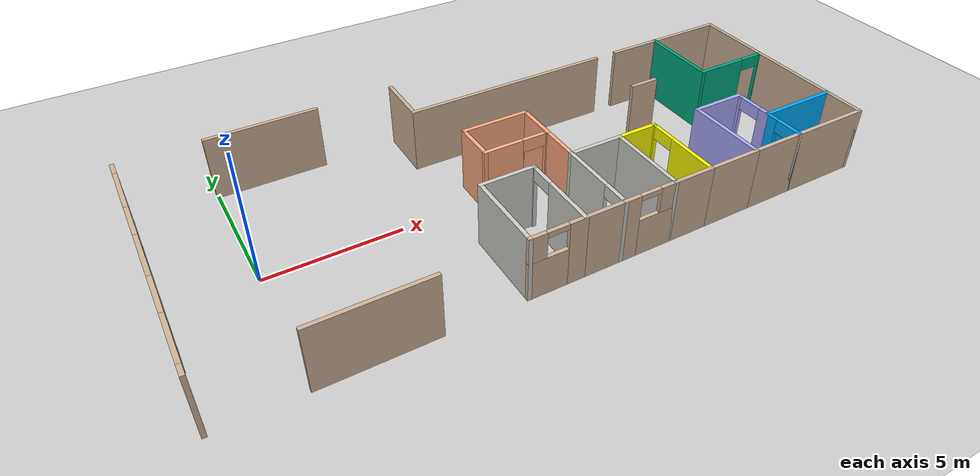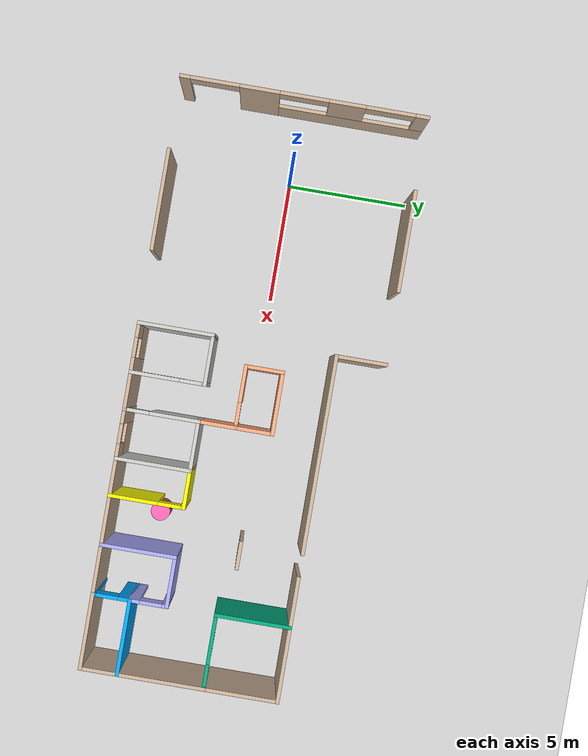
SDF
<sdf version="1.6">
 <world name="default">
  <model name="ground_plane">
   <static>1</static>
   <link name="link">
    <collision name="collision">
     <geometry><plane><normal>0 0 1</normal><size>100 100</size></plane></geometry>
     <surface><friction><ode><mu>100</mu><mu2>50</mu2></ode></friction></surface>
    </collision>
    <visual name="visual">
     <cast_shadows>0</cast_shadows>
     <geometry><plane><normal>0 0 1</normal><size>100 100</size></plane></geometry>
     <material>
      <script><uri>file://media/materials/scripts/gazebo.material</uri><name>Gazebo/Grey</name></script>
     </material>
    </visual>
   </link>
  </model>
  <model name="restaurant_renato">
   <pose>9 0 0 0 -0 0</pose>
   <link name="Wall_1">
    <pose>-12 0 0 0 -0 1.5708</pose>
    <visual name="Wall_1_Visual_0">
     <pose>-4.85276 0 1.25 0 -0 0</pose>
     <geometry><box><size>0.444476 0.15 2.5</size></box></geometry>
     <material>
      <script><uri>file://media/materials/scripts/gazebo.material</uri><name>Gazebo/Grey</name></script>
      <ambient>0.8 0.7 0.6 1</ambient>
     </material>
     <meta><layer>0</layer></meta>
    </visual>
    <collision name="Wall_1_Collision_0">
     <geometry><box><size>0.444476 0.15 2.5</size></box></geometry>
     <pose>-4.85276 0 1.25 0 -0 0</pose>
    </collision>
    <visual name="Wall_1_Visual_1">
     <pose>-1.81526 0 1.25 0 -0 0</pose>
     <geometry><box><size>1.63052 0.15 2.5</size></box></geometry>
     <material>
      <script><uri>file://media/materials/scripts/gazebo.material</uri><name>Gazebo/Grey</name></script>
      <ambient>0.8 0.7 0.6 1</ambient>
     </material>
     <meta><layer>0</layer></meta>
    </visual>
    <collision name="Wall_1_Collision_1">
     <geometry><box><size>1.63052 0.15 2.5</size></box></geometry>
     <pose>-1.81526 0 1.25 0 -0 0</pose>
    </collision>
    <visual name="Wall_1_Visual_2">
     <pose>2.0375 0 0.5 0 -0 0</pose>
     <geometry><box><size>6.075 0.15 1</size></box></geometry>
     <material>
      <script><uri>file://media/materials/scripts/gazebo.material</uri><name>Gazebo/Grey</name></script>
      <ambient>0.8 0.7 0.6 1</ambient>
     </material>
     <meta><layer>0</layer></meta>
    </visual>
    <collision name="Wall_1_Collision_2">
     <geometry><box><size>6.075 0.15 1</size></box></geometry>
     <pose>2.0375 0 0.5 0 -0 0</pose>
    </collision>
    <visual name="Wall_1_Visual_3">
     <pose>1.75 0 1.75 0 -0 0</pose>
     <geometry><box><size>1.5 0.15 1.5</size></box></geometry>
     <material>
      <script><uri>file://media/materials/scripts/gazebo.material</uri><name>Gazebo/Grey</name></script>
      <ambient>0.8 0.7 0.6 1</ambient>
     </material>
     <meta><layer>0</layer></meta>
    </visual>
    <collision name="Wall_1_Collision_3">
     <geometry><box><size>1.5 0.15 1.5</size></box></geometry>
     <pose>1.75 0 1.75 0 -0 0</pose>
    </collision>
    <visual name="Wall_1_Visual_4">
     <pose>4.7875 0 1.75 0 -0 0</pose>
     <geometry><box><size>0.575 0.15 1.5</size></box></geometry>
     <material>
      <script><uri>file://media/materials/scripts/gazebo.material</uri><name>Gazebo/Grey</name></script>
      <ambient>0.8 0.7 0.6 1</ambient>
     </material>
     <meta><layer>0</layer></meta>
    </visual>
    <collision name="Wall_1_Collision_4">
     <geometry><box><size>0.575 0.15 1.5</size></box></geometry>
     <pose>4.7875 0 1.75 0 -0 0</pose>
    </collision>
    <visual name="Wall_1_Visual_5">
     <pose>-3.63052 0 2.25 0 -0 0</pose>
     <geometry><box><size>2 0.15 0.5</size></box></geometry>
     <material>
      <script><uri>file://media/materials/scripts/gazebo.material</uri><name>Gazebo/Grey</name></script>
      <ambient>0.8 0.7 0.6 1</ambient>
     </material>
     <meta><layer>0</layer></meta>
    </visual>
    <collision name="Wall_1_Collision_5">
     <geometry><box><size>2 0.15 0.5</size></box></geometry>
     <pose>-3.63052 0 2.25 0 -0 0</pose>
    </collision>
    <visual name="Wall_1_Visual_6">
     <pose>0 0 2.25 0 -0 0</pose>
     <geometry><box><size>2 0.15 0.5</size></box></geometry>
     <material>
      <script><uri>file://media/materials/scripts/gazebo.material</uri><name>Gazebo/Grey</name></script>
      <ambient>0.8 0.7 0.6 1</ambient>
     </material>
     <meta><layer>0</layer></meta>
    </visual>
    <collision name="Wall_1_Collision_6">
     <geometry><box><size>2 0.15 0.5</size></box></geometry>
     <pose>0 0 2.25 0 -0 0</pose>
    </collision>
    <visual name="Wall_1_Visual_7">
     <pose>3.5 0 2.25 0 -0 0</pose>
     <geometry><box><size>2 0.15 0.5</size></box></geometry>
     <material>
      <script><uri>file://media/materials/scripts/gazebo.material</uri><name>Gazebo/Grey</name></script>
      <ambient>0.8 0.7 0.6 1</ambient>
     </material>
     <meta><layer>0</layer></meta>
    </visual>
    <collision name="Wall_1_Collision_7">
     <geometry><box><size>2 0.15 0.5</size></box></geometry>
     <pose>3.5 0 2.25 0 -0 0</pose>
    </collision>
   </link>
   <link name="Wall_24">
    <collision name="Wall_24_Collision">
     <geometry><box><size>3.15 0.15 2.5</size></box></geometry>
     <pose>0 0 1.25 0 -0 0</pose>
    </collision>
    <visual name="Wall_24_Visual">
     <pose>0 0 1.25 0 -0 0</pose>
     <geometry><box><size>3.15 0.15 2.5</size></box></geometry>
     <material>
      <script><uri>file://media/materials/scripts/gazebo.material</uri><name>Gazebo/CeilingTiled</name></script>
      <ambient>1 0 0 1</ambient>
     </material>
     <meta><layer>0</layer></meta>
    </visual>
    <pose>-2 -3.5 0 0 -0 1.5708</pose>
   </link>
   <link name="Wall_25">
    <collision name="Wall_25_Collision">
     <geometry><box><size>2.15 0.15 2.5</size></box></geometry>
     <pose>0 0 1.25 0 -0 0</pose>
    </collision>
    <visual name="Wall_25_Visual">
     <pose>0 0 1.25 0 -0 0</pose>
     <geometry><box><size>2.15 0.15 2.5</size></box></geometry>
     <material>
      <script><uri>file://media/materials/scripts/gazebo.material</uri><name>Gazebo/CeilingTiled</name></script>
      <ambient>1 0 0 1</ambient>
     </material>
     <meta><layer>0</layer></meta>
    </visual>
    <pose>-1 -2 0 0 -0 0</pose>
   </link>
   <link name="Wall_26">
    <pose>0 -3.5 0 0 0 -1.5708</pose>
    <visual name="Wall_26_Visual_0">
     <pose>-1.47325 0 1.25 0 -0 0</pose>
     <geometry><box><size>0.203506 0.15 2.5</size></box></geometry>
     <material>
      <script><uri>file://media/materials/scripts/gazebo.material</uri><name>Gazebo/CeilingTiled</name></script>
      <ambient>1 0 0 1</ambient>
     </material>
     <meta><layer>0</layer></meta>
    </visual>
    <collision name="Wall_26_Collision_0">
     <geometry><box><size>0.203506 0.15 2.5</size></box></geometry>
     <pose>-1.47325 0 1.25 0 -0 0</pose>
    </collision>
    <visual name="Wall_26_Visual_1">
     <pose>0.551753 0 1.25 0 -0 0</pose>
     <geometry><box><size>2.04649 0.15 2.5</size></box></geometry>
     <material>
      <script><uri>file://media/materials/scripts/gazebo.material</uri><name>Gazebo/CeilingTiled</name></script>
      <ambient>1 0 0 1</ambient>
     </material>
     <meta><layer>0</layer></meta>
    </visual>
    <collision name="Wall_26_Collision_1">
     <geometry><box><size>2.04649 0.15 2.5</size></box></geometry>
     <pose>0.551753 0 1.25 0 -0 0</pose>
    </collision>
    <visual name="Wall_26_Visual_2">
     <pose>-0.921494 0 2.25 0 -0 0</pose>
     <geometry><box><size>0.9 0.15 0.5</size></box></geometry>
     <material>
      <script><uri>file://media/materials/scripts/gazebo.material</uri><name>Gazebo/CeilingTiled</name></script>
      <ambient>1 0 0 1</ambient>
     </material>
     <meta><layer>0</layer></meta>
    </visual>
    <collision name="Wall_26_Collision_2">
     <geometry><box><size>0.9 0.15 0.5</size></box></geometry>
     <pose>-0.921494 0 2.25 0 -0 0</pose>
    </collision>
   </link>
   <link name="Wall_27">
    <pose>-1 -5 0 0 -0 3.14159</pose>
    <visual name="Wall_27_Visual_0">
     <pose>-0.7375 0 1.25 0 -0 0</pose>
     <geometry><box><size>0.675 0.15 2.5</size></box></geometry>
     <material>
      <script><uri>file://media/materials/scripts/gazebo.material</uri><name>Gazebo/Grey</name></script>
      <ambient>0.8 0.7 0.6 1</ambient>
     </material>
     <meta><layer>0</layer></meta>
    </visual>
    <collision name="Wall_27_Collision_0">
     <geometry><box><size>0.675 0.15 2.5</size></box></geometry>
     <pose>-0.7375 0 1.25 0 -0 0</pose>
    </collision>
    <visual name="Wall_27_Visual_1">
     <pose>0.3375 0 0.75 0 -0 0</pose>
     <geometry><box><size>1.475 0.15 1.5</size></box></geometry>
     <material>
      <script><uri>file://media/materials/scripts/gazebo.material</uri><name>Gazebo/Grey</name></script>
      <ambient>0.8 0.7 0.6 1</ambient>
     </material>
     <meta><layer>0</layer></meta>
    </visual>
    <collision name="Wall_27_Collision_1">
     <geometry><box><size>1.475 0.15 1.5</size></box></geometry>
     <pose>0.3375 0 0.75 0 -0 0</pose>
    </collision>
    <visual name="Wall_27_Visual_2">
     <pose>0.7375 0 2 0 -0 0</pose>
     <geometry><box><size>0.675 0.15 1</size></box></geometry>
     <material>
      <script><uri>file://media/materials/scripts/gazebo.material</uri><name>Gazebo/Grey</name></script>
      <ambient>0.8 0.7 0.6 1</ambient>
     </material>
     <meta><layer>0</layer></meta>
    </visual>
    <collision name="Wall_27_Collision_2">
     <geometry><box><size>0.675 0.15 1</size></box></geometry>
     <pose>0.7375 0 2 0 -0 0</pose>
    </collision>
    <visual name="Wall_27_Visual_3">
     <pose>0 0 2.4 0 -0 0</pose>
     <geometry><box><size>0.8 0.15 0.2</size></box></geometry>
     <material>
      <script><uri>file://media/materials/scripts/gazebo.material</uri><name>Gazebo/Grey</name></script>
      <ambient>0.8 0.7 0.6 1</ambient>
     </material>
     <meta><layer>0</layer></meta>
    </visual>
    <collision name="Wall_27_Collision_3">
     <geometry><box><size>0.8 0.15 0.2</size></box></geometry>
     <pose>0 0 2.4 0 -0 0</pose>
    </collision>
   </link>
   <link name="Wall_29">
    <collision name="Wall_29_Collision">
     <geometry><box><size>1.65 0.15 2.5</size></box></geometry>
     <pose>0 0 1.25 0 -0 0</pose>
    </collision>
    <visual name="Wall_29_Visual">
     <pose>0 0 1.25 0 -0 0</pose>
     <geometry><box><size>1.65 0.15 2.5</size></box></geometry>
     <material>
      <script><uri>file://media/materials/scripts/gazebo.material</uri><name>Gazebo/Grey</name></script>
      <ambient>0.8 0.7 0.6 1</ambient>
     </material>
     <meta><layer>0</layer></meta>
    </visual>
    <pose>0.75 -5 0 0 -0 0</pose>
   </link>
   <link name="Wall_3">
    <collision name="Wall_3_Collision">
     <geometry><box><size>4.15 0.15 2.5</size></box></geometry>
     <pose>0 0 1.25 0 -0 0</pose>
    </collision>
    <visual name="Wall_3_Visual">
     <pose>0 0 1.25 0 -0 0</pose>
     <geometry><box><size>4.15 0.15 2.5</size></box></geometry>
     <material>
      <script><uri>file://media/materials/scripts/gazebo.material</uri><name>Gazebo/Grey</name></script>
      <ambient>0.8 0.7 0.6 1</ambient>
     </material>
     <meta><layer>0</layer></meta>
    </visual>
    <pose>-7 5 0 0 -0 0</pose>
   </link>
   <link name="Wall_30">
    <pose>1.5 -3.5 0 0 -0 1.5708</pose>
    <visual name="Wall_30_Visual_0">
     <pose>-1.48476 0 1.25 0 -0 0</pose>
     <geometry><box><size>0.18049 0.15 2.5</size></box></geometry>
     <material>
      <script><uri>file://media/materials/scripts/gazebo.material</uri><name>Gazebo/CeilingTiled</name></script>
      <ambient>1 0 0.498039 1</ambient>
     </material>
     <meta><layer>0</layer></meta>
    </visual>
    <collision name="Wall_30_Collision_0">
     <geometry><box><size>0.18049 0.15 2.5</size></box></geometry>
     <pose>-1.48476 0 1.25 0 -0 0</pose>
    </collision>
    <visual name="Wall_30_Visual_1">
     <pose>0.540245 0 1.25 0 -0 0</pose>
     <geometry><box><size>2.06951 0.15 2.5</size></box></geometry>
     <material>
      <script><uri>file://media/materials/scripts/gazebo.material</uri><name>Gazebo/CeilingTiled</name></script>
      <ambient>1 0 0.498039 1</ambient>
     </material>
     <meta><layer>0</layer></meta>
    </visual>
    <collision name="Wall_30_Collision_1">
     <geometry><box><size>2.06951 0.15 2.5</size></box></geometry>
     <pose>0.540245 0 1.25 0 -0 0</pose>
    </collision>
    <visual name="Wall_30_Visual_2">
     <pose>-0.94451 0 2.25 0 -0 0</pose>
     <geometry><box><size>0.9 0.15 0.5</size></box></geometry>
     <material>
      <script><uri>file://media/materials/scripts/gazebo.material</uri><name>Gazebo/CeilingTiled</name></script>
      <ambient>1 0 0.498039 1</ambient>
     </material>
     <meta><layer>0</layer></meta>
    </visual>
    <collision name="Wall_30_Collision_2">
     <geometry><box><size>0.9 0.15 0.5</size></box></geometry>
     <pose>-0.94451 0 2.25 0 -0 0</pose>
    </collision>
   </link>
   <link name="Wall_31">
    <collision name="Wall_31_Collision">
     <geometry><box><size>2.15048 0.15 2.5</size></box></geometry>
     <pose>0 0 1.25 0 -0 0</pose>
    </collision>
    <visual name="Wall_31_Visual">
     <pose>0 0 1.25 0 -0 0</pose>
     <geometry><box><size>2.15048 0.15 2.5</size></box></geometry>
     <material>
      <script><uri>file://media/materials/scripts/gazebo.material</uri><name>Gazebo/CeilingTiled</name></script>
      <ambient>1 0 0.498039 1</ambient>
     </material>
     <meta><layer>0</layer></meta>
    </visual>
    <pose>2.5 -2 0 0 -0 0</pose>
   </link>
   <link name="Wall_32">
    <collision name="Wall_32_Collision">
     <geometry><box><size>3.15 0.15 2.5</size></box></geometry>
     <pose>0 0 1.25 0 -0 0</pose>
    </collision>
    <visual name="Wall_32_Visual">
     <pose>0 0 1.25 0 -0 0</pose>
     <geometry><box><size>3.15 0.15 2.5</size></box></geometry>
     <material>
      <script><uri>file://media/materials/scripts/gazebo.material</uri><name>Gazebo/CeilingTiled</name></script>
      <ambient>1 0 0.498039 1</ambient>
     </material>
     <meta><layer>0</layer></meta>
    </visual>
    <pose>3.5 -3.5 0 0 0 -1.5708</pose>
   </link>
   <link name="Wall_36">
    <collision name="Wall_36_Collision">
     <geometry><box><size>1.65 0.15 2.5</size></box></geometry>
     <pose>0 0 1.25 0 -0 0</pose>
    </collision>
    <visual name="Wall_36_Visual">
     <pose>0 0 1.25 0 -0 0</pose>
     <geometry><box><size>1.65 0.15 2.5</size></box></geometry>
     <material>
      <script><uri>file://media/materials/scripts/gazebo.material</uri><name>Gazebo/Grey</name></script>
      <ambient>1 0.666667 0.498039 1</ambient>
     </material>
     <meta><layer>0</layer></meta>
    </visual>
    <pose>1.5 -1.25 0 0 -0 1.5708</pose>
   </link>
   <link name="Wall_37">
    <pose>0.25 -0.5 0 0 -0 3.14159</pose>
    <visual name="Wall_37_Visual_0">
     <pose>-1.22433 0 1.25 0 -0 0</pose>
     <geometry><box><size>0.201342 0.15 2.5</size></box></geometry>
     <material>
      <script><uri>file://media/materials/scripts/gazebo.material</uri><name>Gazebo/Grey</name></script>
      <ambient>1 0.666667 0.498039 1</ambient>
     </material>
     <meta><layer>0</layer></meta>
    </visual>
    <collision name="Wall_37_Collision_0">
     <geometry><box><size>0.201342 0.15 2.5</size></box></geometry>
     <pose>-1.22433 0 1.25 0 -0 0</pose>
    </collision>
    <visual name="Wall_37_Visual_1">
     <pose>0.550671 0 1.25 0 -0 0</pose>
     <geometry><box><size>1.54866 0.15 2.5</size></box></geometry>
     <material>
      <script><uri>file://media/materials/scripts/gazebo.material</uri><name>Gazebo/Grey</name></script>
      <ambient>1 0.666667 0.498039 1</ambient>
     </material>
     <meta><layer>0</layer></meta>
    </visual>
    <collision name="Wall_37_Collision_1">
     <geometry><box><size>1.54866 0.15 2.5</size></box></geometry>
     <pose>0.550671 0 1.25 0 -0 0</pose>
    </collision>
    <visual name="Wall_37_Visual_2">
     <pose>-0.673658 0 2.25 0 -0 0</pose>
     <geometry><box><size>0.9 0.15 0.5</size></box></geometry>
     <material>
      <script><uri>file://media/materials/scripts/gazebo.material</uri><name>Gazebo/Grey</name></script>
      <ambient>1 0.666667 0.498039 1</ambient>
     </material>
     <meta><layer>0</layer></meta>
    </visual>
    <collision name="Wall_37_Collision_2">
     <geometry><box><size>0.9 0.15 0.5</size></box></geometry>
     <pose>-0.673658 0 2.25 0 -0 0</pose>
    </collision>
   </link>
   <link name="Wall_38">
    <collision name="Wall_38_Collision">
     <geometry><box><size>1.65 0.15 2.5</size></box></geometry>
     <pose>0 0 1.25 0 -0 0</pose>
    </collision>
    <visual name="Wall_38_Visual">
     <pose>0 0 1.25 0 -0 0</pose>
     <geometry><box><size>1.65 0.15 2.5</size></box></geometry>
     <material>
      <script><uri>file://media/materials/scripts/gazebo.material</uri><name>Gazebo/Grey</name></script>
      <ambient>1 0.666667 0.498039 1</ambient>
     </material>
     <meta><layer>0</layer></meta>
    </visual>
    <pose>-1 0.25 0 0 -0 1.5708</pose>
   </link>
   <link name="Wall_39">
    <collision name="Wall_39_Collision">
     <geometry><box><size>2.65 0.15 2.5</size></box></geometry>
     <pose>0 0 1.25 0 -0 0</pose>
    </collision>
    <visual name="Wall_39_Visual">
     <pose>0 0 1.25 0 -0 0</pose>
     <geometry><box><size>2.65 0.15 2.5</size></box></geometry>
     <material>
      <script><uri>file://media/materials/scripts/gazebo.material</uri><name>Gazebo/Grey</name></script>
      <ambient>1 0.666667 0.498039 1</ambient>
     </material>
     <meta><layer>0</layer></meta>
    </visual>
    <pose>0.25 1 0 0 -0 0</pose>
   </link>
   <link name="Wall_40">
    <collision name="Wall_40_Collision">
     <geometry><box><size>1.65 0.15 2.5</size></box></geometry>
     <pose>0 0 1.25 0 -0 0</pose>
    </collision>
    <visual name="Wall_40_Visual">
     <pose>0 0 1.25 0 -0 0</pose>
     <geometry><box><size>1.65 0.15 2.5</size></box></geometry>
     <material>
      <script><uri>file://media/materials/scripts/gazebo.material</uri><name>Gazebo/Grey</name></script>
      <ambient>1 0.666667 0.498039 1</ambient>
     </material>
     <meta><layer>0</layer></meta>
    </visual>
    <pose>1.5 0.25 0 0 0 -1.5708</pose>
   </link>
   <link name="Wall_44">
    <collision name="Wall_44_Collision">
     <geometry><box><size>1.65 0.15 2.5</size></box></geometry>
     <pose>0 0 1.25 0 -0 0</pose>
    </collision>
    <visual name="Wall_44_Visual">
     <pose>0 0 1.25 0 -0 0</pose>
     <geometry><box><size>1.65 0.15 2.5</size></box></geometry>
     <material>
      <script><uri>file://media/materials/scripts/gazebo.material</uri><name>Gazebo/Grey</name></script>
      <ambient>1 1 0 1</ambient>
     </material>
     <meta><layer>0</layer></meta>
    </visual>
    <pose>4.25 -2 0 0 -0 0</pose>
   </link>
   <link name="Wall_45">
    <pose>5 -3.5 0 0 0 -1.5708</pose>
    <visual name="Wall_45_Visual_0">
     <pose>-1.46507 0 1.25 0 -0 0</pose>
     <geometry><box><size>0.219867 0.15 2.5</size></box></geometry>
     <material>
      <script><uri>file://media/materials/scripts/gazebo.material</uri><name>Gazebo/Grey</name></script>
      <ambient>1 1 0 1</ambient>
     </material>
     <meta><layer>0</layer></meta>
    </visual>
    <collision name="Wall_45_Collision_0">
     <geometry><box><size>0.219867 0.15 2.5</size></box></geometry>
     <pose>-1.46507 0 1.25 0 -0 0</pose>
    </collision>
    <visual name="Wall_45_Visual_1">
     <pose>0.559934 0 1.25 0 -0 0</pose>
     <geometry><box><size>2.03013 0.15 2.5</size></box></geometry>
     <material>
      <script><uri>file://media/materials/scripts/gazebo.material</uri><name>Gazebo/Grey</name></script>
      <ambient>1 1 0 1</ambient>
     </material>
     <meta><layer>0</layer></meta>
    </visual>
    <collision name="Wall_45_Collision_1">
     <geometry><box><size>2.03013 0.15 2.5</size></box></geometry>
     <pose>0.559934 0 1.25 0 -0 0</pose>
    </collision>
    <visual name="Wall_45_Visual_2">
     <pose>-0.905133 0 2.25 0 -0 0</pose>
     <geometry><box><size>0.9 0.15 0.5</size></box></geometry>
     <material>
      <script><uri>file://media/materials/scripts/gazebo.material</uri><name>Gazebo/Grey</name></script>
      <ambient>1 1 0 1</ambient>
     </material>
     <meta><layer>0</layer></meta>
    </visual>
    <collision name="Wall_45_Collision_2">
     <geometry><box><size>0.9 0.15 0.5</size></box></geometry>
     <pose>-0.905133 0 2.25 0 -0 0</pose>
    </collision>
   </link>
   <link name="Wall_46">
    <collision name="Wall_46_Collision">
     <geometry><box><size>1.65 0.15 2.5</size></box></geometry>
     <pose>0 0 1.25 0 -0 0</pose>
    </collision>
    <visual name="Wall_46_Visual">
     <pose>0 0 1.25 0 -0 0</pose>
     <geometry><box><size>1.65 0.15 2.5</size></box></geometry>
     <material>
      <script><uri>file://media/materials/scripts/gazebo.material</uri><name>Gazebo/Grey</name></script>
      <ambient>0.8 0.7 0.6 1</ambient>
     </material>
     <meta><layer>0</layer></meta>
    </visual>
    <pose>4.25 -5 0 0 -0 3.14159</pose>
   </link>
   <link name="Wall_48">
    <collision name="Wall_48_Collision">
     <geometry><box><size>2.15 0.15 2.5</size></box></geometry>
     <pose>0 0 1.25 0 -0 0</pose>
    </collision>
    <visual name="Wall_48_Visual">
     <pose>0 0 1.25 0 -0 0</pose>
     <geometry><box><size>2.15 0.15 2.5</size></box></geometry>
     <material>
      <script><uri>file://media/materials/scripts/gazebo.material</uri><name>Gazebo/Grey</name></script>
      <ambient>0.8 0.7 0.6 1</ambient>
     </material>
     <meta><layer>0</layer></meta>
    </visual>
    <pose>6 -5 0 0 -0 0</pose>
   </link>
   <link name="Wall_55">
    <collision name="Wall_55_Collision">
     <geometry><box><size>1.15 0.15 2.5</size></box></geometry>
     <pose>0 0 1.25 0 -0 0</pose>
    </collision>
    <visual name="Wall_55_Visual">
     <pose>0 0 1.25 0 -0 0</pose>
     <geometry><box><size>1.15 0.15 2.5</size></box></geometry>
     <material>
      <script><uri>file://media/materials/scripts/gazebo.material</uri><name>Gazebo/Grey</name></script>
      <ambient>0.8 0.7 0.6 1</ambient>
     </material>
     <meta><layer>0</layer></meta>
    </visual>
    <pose>6.5 0.5 0 0 -0 0</pose>
   </link>
   <link name="Wall_57">
    <collision name="Wall_57_Collision">
     <geometry><box><size>2.15 0.15 2.5</size></box></geometry>
     <pose>0 0 1.25 0 -0 0</pose>
    </collision>
    <visual name="Wall_57_Visual">
     <pose>0 0 1.25 0 -0 0</pose>
     <geometry><box><size>2.15 0.15 2.5</size></box></geometry>
     <material>
      <script><uri>file://media/materials/scripts/gazebo.material</uri><name>Gazebo/Grey</name></script>
      <ambient>0.8 0.7 0.6 1</ambient>
     </material>
     <meta><layer>0</layer></meta>
    </visual>
    <pose>8 3 0 0 -0 0</pose>
   </link>
   <link name="Wall_6">
    <collision name="Wall_6_Collision">
     <geometry><box><size>4.15 0.15 2.5</size></box></geometry>
     <pose>0 0 1.25 0 -0 0</pose>
    </collision>
    <visual name="Wall_6_Visual">
     <pose>0 0 1.25 0 -0 0</pose>
     <geometry><box><size>4.15 0.15 2.5</size></box></geometry>
     <material>
      <script><uri>file://media/materials/scripts/gazebo.material</uri><name>Gazebo/Grey</name></script>
      <ambient>0.8 0.7 0.6 1</ambient>
     </material>
     <meta><layer>0</layer></meta>
    </visual>
    <pose>-7 -5 0 0 -0 0</pose>
   </link>
   <link name="Wall_60">
    <collision name="Wall_60_Collision">
     <geometry><box><size>3.15 0.15 2.5</size></box></geometry>
     <pose>0 0 1.25 0 -0 0</pose>
    </collision>
    <visual name="Wall_60_Visual">
     <pose>0 0 1.25 0 -0 0</pose>
     <geometry><box><size>3.15 0.15 2.5</size></box></geometry>
     <material>
      <script><uri>file://media/materials/scripts/gazebo.material</uri><name>Gazebo/Grey</name></script>
      <ambient>0.666667 0.666667 1 1</ambient>
     </material>
     <meta><layer>0</layer></meta>
    </visual>
    <pose>7 -3.5 0 0 -0 1.5708</pose>
   </link>
   <link name="Wall_64">
    <pose>10.5 0 0 0 -0 3.14159</pose>
    <visual name="Wall_64_Visual_0">
     <pose>-1.48453 0 1.25 0 -0 0</pose>
     <geometry><box><size>0.180937 0.15 2.5</size></box></geometry>
     <material>
      <script><uri>file://media/materials/scripts/gazebo.material</uri><name>Gazebo/Grey</name></script>
      <ambient>0 0.666667 0.498039 1</ambient>
     </material>
     <meta><layer>0</layer></meta>
    </visual>
    <collision name="Wall_64_Collision_0">
     <geometry><box><size>0.180937 0.15 2.5</size></box></geometry>
     <pose>-1.48453 0 1.25 0 -0 0</pose>
    </collision>
    <visual name="Wall_64_Visual_1">
     <pose>0.540468 0 1.25 0 -0 0</pose>
     <geometry><box><size>2.06906 0.15 2.5</size></box></geometry>
     <material>
      <script><uri>file://media/materials/scripts/gazebo.material</uri><name>Gazebo/Grey</name></script>
      <ambient>0 0.666667 0.498039 1</ambient>
     </material>
     <meta><layer>0</layer></meta>
    </visual>
    <collision name="Wall_64_Collision_1">
     <geometry><box><size>2.06906 0.15 2.5</size></box></geometry>
     <pose>0.540468 0 1.25 0 -0 0</pose>
    </collision>
    <visual name="Wall_64_Visual_2">
     <pose>-0.944063 0 2.25 0 -0 0</pose>
     <geometry><box><size>0.9 0.15 0.5</size></box></geometry>
     <material>
      <script><uri>file://media/materials/scripts/gazebo.material</uri><name>Gazebo/Grey</name></script>
      <ambient>0 0.666667 0.498039 1</ambient>
     </material>
     <meta><layer>0</layer></meta>
    </visual>
    <collision name="Wall_64_Collision_2">
     <geometry><box><size>0.9 0.15 0.5</size></box></geometry>
     <pose>-0.944063 0 2.25 0 -0 0</pose>
    </collision>
   </link>
   <link name="Wall_66">
    <collision name="Wall_66_Collision">
     <geometry><box><size>3.15 0.15 2.5</size></box></geometry>
     <pose>0 0 1.25 0 -0 0</pose>
    </collision>
    <visual name="Wall_66_Visual">
     <pose>0 0 1.25 0 -0 0</pose>
     <geometry><box><size>3.15 0.15 2.5</size></box></geometry>
     <material>
      <script><uri>file://media/materials/scripts/gazebo.material</uri><name>Gazebo/Grey</name></script>
      <ambient>0 0.666667 0.498039 1</ambient>
     </material>
     <meta><layer>0</layer></meta>
    </visual>
    <pose>9 1.5 0 0 0 -1.5708</pose>
   </link>
   <link name="Wall_68">
    <collision name="Wall_68_Collision">
     <geometry><box><size>2.15 0.15 2.5</size></box></geometry>
     <pose>0 0 1.25 0 -0 0</pose>
    </collision>
    <visual name="Wall_68_Visual">
     <pose>0 0 1.25 0 -0 0</pose>
     <geometry><box><size>2.15 0.15 2.5</size></box></geometry>
     <material>
      <script><uri>file://media/materials/scripts/gazebo.material</uri><name>Gazebo/Grey</name></script>
      <ambient>0.666667 0.666667 1 1</ambient>
     </material>
     <meta><layer>0</layer></meta>
    </visual>
    <pose>8 -2 0 0 -0 0</pose>
   </link>
   <link name="Wall_71">
    <collision name="Wall_71_Collision">
     <geometry><box><size>2.15 0.15 2.5</size></box></geometry>
     <pose>0 0 1.25 0 -0 0</pose>
    </collision>
    <visual name="Wall_71_Visual">
     <pose>0 0 1.25 0 -0 0</pose>
     <geometry><box><size>2.15 0.15 2.5</size></box></geometry>
     <material>
      <script><uri>file://media/materials/scripts/gazebo.material</uri><name>Gazebo/Grey</name></script>
      <ambient>0.8 0.7 0.6 1</ambient>
     </material>
     <meta><layer>0</layer></meta>
    </visual>
    <pose>8 -5 0 0 -0 0</pose>
   </link>
   <link name="Wall_72">
    <collision name="Wall_72_Collision">
     <geometry><box><size>0.15 0.15 2.5</size></box></geometry>
     <pose>0 0 1.25 0 -0 0</pose>
    </collision>
    <visual name="Wall_72_Visual">
     <pose>0 0 1.25 0 -0 0</pose>
     <geometry><box><size>0.15 0.15 2.5</size></box></geometry>
     <material>
      <script><uri>file://media/materials/scripts/gazebo.material</uri><name>Gazebo/Grey</name></script>
      <ambient>1 1 1 1</ambient>
     </material>
     <meta><layer>0</layer></meta>
    </visual>
    <pose>9 -5 0 0 -0 0</pose>
   </link>
   <link name="Wall_73">
    <collision name="Wall_73_Collision">
     <geometry><box><size>3.15 0.15 2.5</size></box></geometry>
     <pose>0 0 1.25 0 -0 0</pose>
    </collision>
    <visual name="Wall_73_Visual">
     <pose>0 0 1.25 0 -0 0</pose>
     <geometry><box><size>3.15 0.15 2.5</size></box></geometry>
     <material>
      <script><uri>file://media/materials/scripts/gazebo.material</uri><name>Gazebo/Grey</name></script>
      <ambient>0.8 0.7 0.6 1</ambient>
     </material>
     <meta><layer>0</layer></meta>
    </visual>
    <pose>10.5 -5 0 0 -0 0</pose>
   </link>
   <link name="Wall_75">
    <pose>9 -2.75 0 0 0 -1.5708</pose>
    <visual name="Wall_75_Visual_0">
     <pose>-0.6875 0 1.25 0 -0 0</pose>
     <geometry><box><size>0.275 0.15 2.5</size></box></geometry>
     <material>
      <script><uri>file://media/materials/scripts/gazebo.material</uri><name>Gazebo/Grey</name></script>
      <ambient>0.666667 0.666667 1 1</ambient>
     </material>
     <meta><layer>0</layer></meta>
    </visual>
    <collision name="Wall_75_Collision_0">
     <geometry><box><size>0.275 0.15 2.5</size></box></geometry>
     <pose>-0.6875 0 1.25 0 -0 0</pose>
    </collision>
    <visual name="Wall_75_Visual_1">
     <pose>0.5875 0 1.25 0 -0 0</pose>
     <geometry><box><size>0.475 0.15 2.5</size></box></geometry>
     <material>
      <script><uri>file://media/materials/scripts/gazebo.material</uri><name>Gazebo/Grey</name></script>
      <ambient>0.666667 0.666667 1 1</ambient>
     </material>
     <meta><layer>0</layer></meta>
    </visual>
    <collision name="Wall_75_Collision_1">
     <geometry><box><size>0.475 0.15 2.5</size></box></geometry>
     <pose>0.5875 0 1.25 0 -0 0</pose>
    </collision>
    <visual name="Wall_75_Visual_2">
     <pose>-0.1 0 2.25 0 -0 0</pose>
     <geometry><box><size>0.9 0.15 0.5</size></box></geometry>
     <material>
      <script><uri>file://media/materials/scripts/gazebo.material</uri><name>Gazebo/Grey</name></script>
      <ambient>0.666667 0.666667 1 1</ambient>
     </material>
     <meta><layer>0</layer></meta>
    </visual>
    <collision name="Wall_75_Collision_2">
     <geometry><box><size>0.9 0.15 0.5</size></box></geometry>
     <pose>-0.1 0 2.25 0 -0 0</pose>
    </collision>
   </link>
   <link name="Wall_76">
    <pose>9 -4.25 0 0 0 -1.5708</pose>
    <visual name="Wall_76_Visual_0">
     <pose>-0.54736 0 1.25 0 -0 0</pose>
     <geometry><box><size>0.555281 0.15 2.5</size></box></geometry>
     <material>
      <script><uri>file://media/materials/scripts/gazebo.material</uri><name>Gazebo/Grey</name></script>
      <ambient>0 0.666667 1 1</ambient>
     </material>
     <meta><layer>0</layer></meta>
    </visual>
    <collision name="Wall_76_Collision_0">
     <geometry><box><size>0.555281 0.15 2.5</size></box></geometry>
     <pose>-0.54736 0 1.25 0 -0 0</pose>
    </collision>
    <visual name="Wall_76_Visual_1">
     <pose>0.72764 0 1.25 0 -0 0</pose>
     <geometry><box><size>0.194719 0.15 2.5</size></box></geometry>
     <material>
      <script><uri>file://media/materials/scripts/gazebo.material</uri><name>Gazebo/Grey</name></script>
      <ambient>0 0.666667 1 1</ambient>
     </material>
     <meta><layer>0</layer></meta>
    </visual>
    <collision name="Wall_76_Collision_1">
     <geometry><box><size>0.194719 0.15 2.5</size></box></geometry>
     <pose>0.72764 0 1.25 0 -0 0</pose>
    </collision>
    <visual name="Wall_76_Visual_2">
     <pose>0.180281 0 2.25 0 -0 0</pose>
     <geometry><box><size>0.9 0.15 0.5</size></box></geometry>
     <material>
      <script><uri>file://media/materials/scripts/gazebo.material</uri><name>Gazebo/Grey</name></script>
      <ambient>0 0.666667 1 1</ambient>
     </material>
     <meta><layer>0</layer></meta>
    </visual>
    <collision name="Wall_76_Collision_2">
     <geometry><box><size>0.9 0.15 0.5</size></box></geometry>
     <pose>0.180281 0 2.25 0 -0 0</pose>
    </collision>
   </link>
   <link name="Wall_78">
    <collision name="Wall_78_Collision">
     <geometry><box><size>3.15 0.15 2.5</size></box></geometry>
     <pose>0 0 1.25 0 -0 0</pose>
    </collision>
    <visual name="Wall_78_Visual">
     <pose>0 0 1.25 0 -0 0</pose>
     <geometry><box><size>3.15 0.15 2.5</size></box></geometry>
     <material>
      <script><uri>file://media/materials/scripts/gazebo.material</uri><name>Gazebo/Grey</name></script>
      <ambient>0 0.666667 1 1</ambient>
     </material>
     <meta><layer>0</layer></meta>
    </visual>
    <pose>10.5 -3.5 0 0 -0 0</pose>
   </link>
   <link name="Wall_80">
    <collision name="Wall_80_Collision">
     <geometry><box><size>1.65 0.15 2.5</size></box></geometry>
     <pose>0 0 1.25 0 -0 0</pose>
    </collision>
    <visual name="Wall_80_Visual">
     <pose>0 0 1.25 0 -0 0</pose>
     <geometry><box><size>1.65 0.15 2.5</size></box></geometry>
     <material>
      <script><uri>file://media/materials/scripts/gazebo.material</uri><name>Gazebo/Grey</name></script>
      <ambient>0.8 0.7 0.6 1</ambient>
     </material>
     <meta><layer>0</layer></meta>
    </visual>
    <pose>12 -4.25 0 0 0 -1.5708</pose>
   </link>
   <link name="Wall_82">
    <collision name="Wall_82_Collision">
     <geometry><box><size>3.65 0.15 2.5</size></box></geometry>
     <pose>0 0 1.25 0 -0 0</pose>
    </collision>
    <visual name="Wall_82_Visual">
     <pose>0 0 1.25 0 -0 0</pose>
     <geometry><box><size>3.65 0.15 2.5</size></box></geometry>
     <material>
      <script><uri>file://media/materials/scripts/gazebo.material</uri><name>Gazebo/Grey</name></script>
      <ambient>0.8 0.7 0.6 1</ambient>
     </material>
     <meta><layer>0</layer></meta>
    </visual>
    <pose>12 -1.75 0 0 0 -1.5708</pose>
   </link>
   <link name="Wall_86">
    <pose>2.5 -5 0 0 -0 0</pose>
    <visual name="Wall_86_Visual_0">
     <pose>-0.7375 0 1.25 0 -0 0</pose>
     <geometry><box><size>0.675 0.15 2.5</size></box></geometry>
     <material>
      <script><uri>file://media/materials/scripts/gazebo.material</uri><name>Gazebo/Grey</name></script>
      <ambient>0.8 0.7 0.6 1</ambient>
     </material>
     <meta><layer>0</layer></meta>
    </visual>
    <collision name="Wall_86_Collision_0">
     <geometry><box><size>0.675 0.15 2.5</size></box></geometry>
     <pose>-0.7375 0 1.25 0 -0 0</pose>
    </collision>
    <visual name="Wall_86_Visual_1">
     <pose>0.3375 0 0.75 0 -0 0</pose>
     <geometry><box><size>1.475 0.15 1.5</size></box></geometry>
     <material>
      <script><uri>file://media/materials/scripts/gazebo.material</uri><name>Gazebo/Grey</name></script>
      <ambient>0.8 0.7 0.6 1</ambient>
     </material>
     <meta><layer>0</layer></meta>
    </visual>
    <collision name="Wall_86_Collision_1">
     <geometry><box><size>1.475 0.15 1.5</size></box></geometry>
     <pose>0.3375 0 0.75 0 -0 0</pose>
    </collision>
    <visual name="Wall_86_Visual_2">
     <pose>0.7375 0 2 0 -0 0</pose>
     <geometry><box><size>0.675 0.15 1</size></box></geometry>
     <material>
      <script><uri>file://media/materials/scripts/gazebo.material</uri><name>Gazebo/Grey</name></script>
      <ambient>0.8 0.7 0.6 1</ambient>
     </material>
     <meta><layer>0</layer></meta>
    </visual>
    <collision name="Wall_86_Collision_2">
     <geometry><box><size>0.675 0.15 1</size></box></geometry>
     <pose>0.7375 0 2 0 -0 0</pose>
    </collision>
    <visual name="Wall_86_Visual_3">
     <pose>0 0 2.4 0 -0 0</pose>
     <geometry><box><size>0.8 0.15 0.2</size></box></geometry>
     <material>
      <script><uri>file://media/materials/scripts/gazebo.material</uri><name>Gazebo/Grey</name></script>
      <ambient>0.8 0.7 0.6 1</ambient>
     </material>
     <meta><layer>0</layer></meta>
    </visual>
    <collision name="Wall_86_Collision_3">
     <geometry><box><size>0.8 0.15 0.2</size></box></geometry>
     <pose>0 0 2.4 0 -0 0</pose>
    </collision>
   </link>
   <link name="Wall_88">
    <collision name="Wall_88_Collision">
     <geometry><box><size>2.15 0.15 2.5</size></box></geometry>
     <pose>0 0 1.25 0 -0 0</pose>
    </collision>
    <visual name="Wall_88_Visual">
     <pose>0 0 1.25 0 -0 0</pose>
     <geometry><box><size>2.15 0.15 2.5</size></box></geometry>
     <material>
      <script><uri>file://media/materials/scripts/gazebo.material</uri><name>Gazebo/Grey</name></script>
      <ambient>0.8 0.7 0.6 1</ambient>
     </material>
     <meta><layer>0</layer></meta>
    </visual>
    <pose>-2 4 0 0 0 -1.5708</pose>
   </link>
   <link name="Wall_89">
    <collision name="Wall_89_Collision">
     <geometry><box><size>8.15 0.15 2.5</size></box></geometry>
     <pose>0 0 1.25 0 -0 0</pose>
    </collision>
    <visual name="Wall_89_Visual">
     <pose>0 0 1.25 0 -0 0</pose>
     <geometry><box><size>8.15 0.15 2.5</size></box></geometry>
     <material>
      <script><uri>file://media/materials/scripts/gazebo.material</uri><name>Gazebo/Grey</name></script>
      <ambient>0.8 0.7 0.6 1</ambient>
     </material>
     <meta><layer>0</layer></meta>
    </visual>
    <pose>2 3 0 0 -0 0</pose>
   </link>
   <link name="Wall_91">
    <collision name="Wall_91_Collision">
     <geometry><box><size>3.15 0.15 2.5</size></box></geometry>
     <pose>0 0 1.25 0 -0 0</pose>
    </collision>
    <visual name="Wall_91_Visual">
     <pose>0 0 1.25 0 -0 0</pose>
     <geometry><box><size>3.15 0.15 2.5</size></box></geometry>
     <material>
      <script><uri>file://media/materials/scripts/gazebo.material</uri><name>Gazebo/Grey</name></script>
      <ambient>0.8 0.7 0.6 1</ambient>
     </material>
     <meta><layer>0</layer></meta>
    </visual>
    <pose>10.5 3 0 0 -0 0</pose>
   </link>
   <link name="Wall_92">
    <collision name="Wall_92_Collision">
     <geometry><box><size>3.15 0.15 2.5</size></box></geometry>
     <pose>0 0 1.25 0 -0 0</pose>
    </collision>
    <visual name="Wall_92_Visual">
     <pose>0 0 1.25 0 -0 0</pose>
     <geometry><box><size>3.15 0.15 2.5</size></box></geometry>
     <material>
      <script><uri>file://media/materials/scripts/gazebo.material</uri><name>Gazebo/Grey</name></script>
      <ambient>0.8 0.7 0.6 1</ambient>
     </material>
     <meta><layer>0</layer></meta>
    </visual>
    <pose>12 1.5 0 0 0 -1.5708</pose>
   </link>
   <static>1</static>
  </model>
  <model name="garbage_can">
   <link name="link_3">
    <pose>0 0 0.5 0 -0 0</pose>
    <inertial>
     <mass>10</mass>
     <inertia><ixx>0.145833</ixx><ixy>0</ixy><ixz>0</ixz><iyy>0.145833</iyy><iyz>0</iyz><izz>0.125</izz></inertia>
    </inertial>
    <visual name="visual">
     <geometry><cylinder><radius>0.4</radius><length>1</length></cylinder></geometry>
     <material>
      <lighting>1</lighting>
      <script><uri>file://media/materials/scripts/gazebo.material</uri><name>Gazebo/Grey</name></script>
      <shader type="pixel"><normal_map>__default__</normal_map></shader>
      <ambient>0.9 0.3 0.3 1</ambient>
      <diffuse>0.9 0.3 0.3 1</diffuse>
      <specular>0.01 0.01 0.01 1</specular>
      <emissive>0 0 0 1</emissive>
     </material>
    </visual>
    <collision name="collision">
     <geometry><cylinder><radius>0.4</radius><length>1</length></cylinder></geometry>
     <surface>
      <friction>
       <ode><mu>1</mu><mu2>1</mu2><fdir1>0 0 0</fdir1><slip1>0</slip1><slip2>0</slip2></ode>
       <torsional>
        <coefficient>1</coefficient>
        <patch_radius>0</patch_radius>
        <surface_radius>0</surface_radius>
        <use_patch_radius>1</use_patch_radius>
        <ode><slip>0</slip></ode>
       </torsional>
      </friction>
      <bounce><restitution_coefficient>0</restitution_coefficient><threshold>1e+06</threshold></bounce>
      <contact>
       <collide_without_contact>0</collide_without_contact>
       <collide_without_contact_bitmask>1</collide_without_contact_bitmask>
       <collide_bitmask>1</collide_bitmask>
       <ode>
        <soft_cfm>0</soft_cfm>
        <soft_erp>0.2</soft_erp>
        <kp>1e+13</kp>
        <kd>1</kd>
        <max_vel>0.01</max_vel>
        <min_depth>0</min_depth>
       </ode>
       <bullet>
        <split_impulse>1</split_impulse>
        <split_impulse_penetration_threshold>-0.01</split_impulse_penetration_threshold>
        <soft_cfm>0</soft_cfm>
        <soft_erp>0.2</soft_erp>
        <kp>1e+13</kp>
        <kd>1</kd>
       </bullet>
      </contact>
     </surface>
    </collision>
   </link>
   <link name="link_4">
    <pose>0 0 1.03 0 -0 0</pose>
    <inertial>
     <mass>1</mass>
     <inertia><ixx>0.145833</ixx><ixy>0</ixy><ixz>0</ixz><iyy>0.145833</iyy><iyz>0</iyz><izz>0.125</izz></inertia>
    </inertial>
    <visual name="visual">
     <geometry><cylinder><radius>0.4</radius><length>0.06</length></cylinder></geometry>
     <material>
      <lighting>1</lighting>
      <script><uri>file://media/materials/scripts/gazebo.material</uri><name>Gazebo/Grey</name></script>
      <shader type="pixel"><normal_map>__default__</normal_map></shader>
      <ambient>1 0.4 0.7 1</ambient>
      <diffuse>1 0.4 0.7 1</diffuse>
      <specular>0.01 0.01 0.01 1</specular>
      <emissive>0 0 0 1</emissive>
     </material>
    </visual>
    <collision name="collision">
     <geometry><cylinder><radius>0.4</radius><length>0.06</length></cylinder></geometry>
     <surface>
      <friction>
       <ode><mu>1</mu><mu2>1</mu2><fdir1>0 0 0</fdir1><slip1>0</slip1><slip2>0</slip2></ode>
       <torsional>
        <coefficient>1</coefficient>
        <patch_radius>0</patch_radius>
        <surface_radius>0</surface_radius>
        <use_patch_radius>1</use_patch_radius>
        <ode><slip>0</slip></ode>
       </torsional>
      </friction>
      <bounce><restitution_coefficient>0</restitution_coefficient><threshold>1e+06</threshold></bounce>
      <contact>
       <collide_without_contact>0</collide_without_contact>
       <collide_without_contact_bitmask>1</collide_without_contact_bitmask>
       <collide_bitmask>1</collide_bitmask>
       <ode>
        <soft_cfm>0</soft_cfm>
        <soft_erp>0.2</soft_erp>
        <kp>1e+13</kp>
        <kd>1</kd>
        <max_vel>0.01</max_vel>
        <min_depth>0</min_depth>
       </ode>
       <bullet>
        <split_impulse>1</split_impulse>
        <split_impulse_penetration_threshold>-0.01</split_impulse_penetration_threshold>
        <soft_cfm>0</soft_cfm>
        <soft_erp>0.2</soft_erp>
        <kp>1e+13</kp>
        <kd>1</kd>
       </bullet>
      </contact>
     </surface>
    </collision>
   </link>
   <static>1</static>
   <pose>14.5129 -3.02183 0 0 -0 0</pose>
  </model>
 </world>
</sdf>
